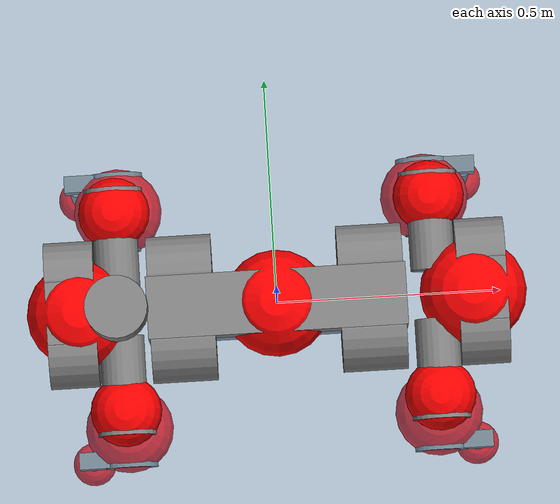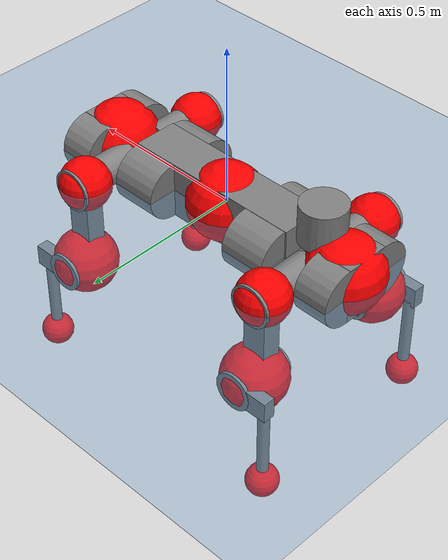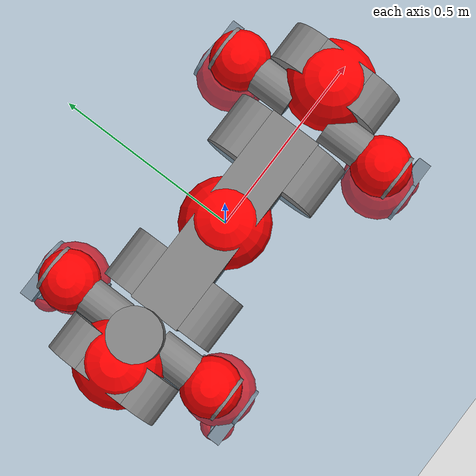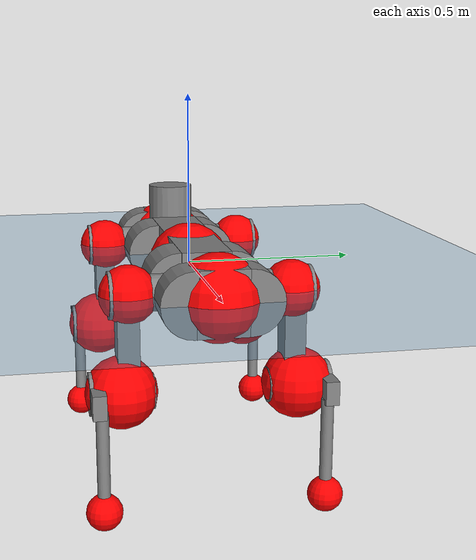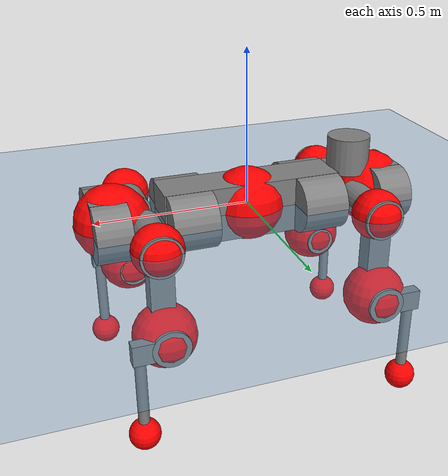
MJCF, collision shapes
<mujoco model="anymal_c">
  <compiler angle="radian" assetdir="assets" balanceinertia="true" inertiafromgeom="false"/>

  <option timestep="0.005" density="1.2" viscosity="2e-05"/>

  <size nkey="1"/>

  <visual>
    <quality shadowsize="8192"/>
    <map shadowclip="0.5"/>
  </visual>

  <default>
    <default class="/">
      <material specular="0" shininess="0.25"/>
      <geom contype="0" conaffinity="0" group="1" solref="-1000 -80"/>
      <site size="0.01 0.005 0.005" group="5"/>
      <general forcelimited="true" forcerange="-80 80" biastype="affine" gainprm="80" biasprm="0 -80 -2"/>
      <default class="anymal_c">
        <joint armature="0.01" damping="0.01" frictionloss="0.1"/>
        <default class="visual">
          <geom type="mesh" group="2"/>
          <default class="visual_zflip"/>
        </default>
        <default class="collision">
          <geom type="cylinder" group="3"/>
          <default class="foot">
            <geom size="0.03 0 0" type="sphere" condim="6" priority="1" friction="0.8 0.02 0.01" solimp="0.015 1 0.03"/>
          </default>
        </default>
      </default>
      <default class="reward_collision_sphere">
        <geom group="5" rgba="1 0 0 1"/>
      </default>
    </default>
  </default>

  <asset>
    <texture type="skybox" colorspace="auto" name="//unnamed_texture_0" builtin="gradient" rgb1="0.95 0.95 0.95" rgb2="0.95 0.95 0.95" width="100" height="600"/>
    <texture type="2d" colorspace="auto" name="texplane" builtin="checker" rgb1="0.345 0.575 0.748" rgb2="0.345 0.575 0.748" markrgb="1 1 1" width="512" height="512"/>
    <texture type="2d" colorspace="linear" name="base" file="base.png"/>
    <texture type="2d" colorspace="linear" name="top_shell" file="top_shell.png"/>
    <texture type="2d" colorspace="linear" name="bottom_shell" file="bottom_shell.png"/>
    <texture type="2d" colorspace="linear" name="remote" file="remote.png"/>
    <texture type="2d" colorspace="linear" name="hatch" file="hatch.png"/>
    <texture type="2d" colorspace="linear" name="handle" file="handle.png"/>
    <texture type="2d" colorspace="linear" name="face" file="face.png"/>
    <texture type="2d" colorspace="linear" name="battery" file="battery.png"/>
    <texture type="2d" colorspace="linear" name="lidar_cage" file="lidar_cage.png"/>
    <texture type="2d" colorspace="linear" name="depth_camera" file="depth_camera.png"/>
    <texture type="2d" colorspace="linear" name="wide_angle_camera" file="wide_angle_camera.png"/>
    <texture type="2d" colorspace="linear" name="lidar" file="lidar.png"/>
    <texture type="2d" colorspace="linear" name="drive" file="drive.png"/>
    <texture type="2d" colorspace="linear" name="hip_l" file="hip_l.png"/>
    <texture type="2d" colorspace="linear" name="shank_l" file="shank_l.png"/>
    <texture type="2d" colorspace="linear" name="foot" file="foot.png"/>
    <texture type="2d" colorspace="linear" name="thigh" file="thigh.png"/>
    <texture type="2d" colorspace="linear" name="shank_r" file="shank_r.png"/>
    <texture type="2d" colorspace="linear" name="hip_r" file="hip_r.png"/>
    <material name="MatPlane" class="/" texture="texplane" texuniform="true" texrepeat="2 2" specular="0.9" shininess="0.5"/>
    <material name="black_plastic" class="/" rgba="0.007 0.007 0.007 1"/>
    <material name="green" class="/" rgba="0.052 0.178 0.033 1"/>
    <material name="red" class="/" rgba="0.178 0.006 0.005 1"/>
    <material name="yellow" class="/" rgba="0.178 0.119 0.006 1"/>
    <material name="lwl" class="/" rgba="0.8 0.8 0.8 1"/>
    <material name="base" class="/" texture="base"/>
    <material name="top_shell" class="/" texture="top_shell"/>
    <material name="bottom_shell" class="/" texture="bottom_shell"/>
    <material name="hip_l" class="/" texture="hip_l"/>
    <material name="thigh" class="/" texture="thigh"/>
    <material name="shank_l" class="/" texture="shank_l"/>
    <material name="foot" class="/" texture="foot"/>
    <material name="hip_r" class="/" texture="hip_r"/>
    <material name="shank" class="/" texture="shank_r"/>
    <material name="hatch" class="/" texture="hatch"/>
    <material name="remote" class="/" texture="remote"/>
    <material name="handle" class="/" texture="handle"/>
    <material name="face" class="/" texture="face"/>
    <material name="depth_camera" class="/" texture="depth_camera"/>
    <material name="wide_angle_camera" class="/" texture="wide_angle_camera"/>
    <material name="battery" class="/" texture="battery"/>
    <material name="lidar_cage" class="/" texture="lidar_cage"/>
    <material name="lidar" class="/" texture="lidar"/>
    <material name="drive" class="/" texture="drive"/>
    <mesh name="base_0" class="/" file="base_0.obj"/>
    <mesh name="base_1" class="/" file="base_1.obj"/>
    <mesh name="base_2" class="/" file="base_2.obj"/>
    <mesh name="base_3" class="/" file="base_3.obj"/>
    <mesh name="base_4" class="/" file="base_4.obj"/>
    <mesh name="base_5" class="/" file="base_5.obj"/>
    <mesh name="top_shell" class="/" file="top_shell.obj"/>
    <mesh name="bottom_shell" class="/" file="bottom_shell.obj"/>
    <mesh name="remote" class="/" file="remote.obj"/>
    <mesh name="handle" class="/" file="handle.obj"/>
    <mesh name="face" class="/" file="face.obj"/>
    <mesh name="wide_angle_camera" class="/" file="wide_angle_camera.obj"/>
    <mesh name="depth_camera" class="/" file="depth_camera.obj"/>
    <mesh name="battery" class="/" file="battery.obj"/>
    <mesh name="lidar_cage" class="/" file="lidar_cage.obj"/>
    <mesh name="lidar" class="/" file="lidar.obj"/>
    <mesh name="drive" class="/" file="drive.obj"/>
    <mesh name="hip_l" class="/" file="hip_l.obj"/>
    <mesh name="thigh" class="/" file="thigh.obj"/>
    <mesh name="shank_l" class="/" file="shank_l.obj"/>
    <mesh name="foot" class="/" file="foot.obj"/>
    <mesh name="hip_r" class="/" file="hip_r.obj"/>
    <mesh name="hatch" class="/" file="hatch.obj"/>
    <mesh name="shank_r" class="/" file="shank_r.obj"/>
  </asset>

  <worldbody>
    <geom name="floor" class="/" size="100 100 0.125" type="plane" group="0" material="MatPlane"/>
    <light name="toplight_shadow" class="/" pos="0 0 5" dir="0.0990148 0.0990148 -0.990148" type="directional" ambient="0.04 0.04 0.04" diffuse="0.55 0.55 0.55" specular="0.12 0.12 0.12"/>
    <light name="toplight_fill" class="/" pos="0 0 5" dir="0.0990148 0.0990148 -0.990148" type="directional" castshadow="false" ambient="0.04 0.04 0.04" diffuse="0.3 0.3 0.3" specular="0.08 0.08 0.08"/>
    <body name="trunk" childclass="anymal_c" pos="-0.000141642 0.000107 -0.00154134" quat="1 -0.000238022 -0.000169585 0.000341036">
      <inertial pos="0.00180937 -0.00103925 0.048609" quat="0.498765 0.500482 0.50046 0.500291" mass="18.7656" diaginertia="0.554844 0.815085 0.170786"/>
      <joint name="//unnamed_joint_0" type="free" armature="0" damping="0" frictionloss="0"/>
      <geom name="//unnamed_geom_1" class="visual" material="green" mesh="base_0"/>
      <geom name="//unnamed_geom_2" class="visual" material="yellow" mesh="base_1"/>
      <geom name="//unnamed_geom_3" class="visual" material="red" mesh="base_2"/>
      <geom name="//unnamed_geom_4" class="visual" material="black_plastic" mesh="base_3"/>
      <geom name="//unnamed_geom_5" class="visual" material="lwl" mesh="base_4"/>
      <geom name="//unnamed_geom_6" class="visual" material="base" mesh="base_5"/>
      <geom name="trunk_1" class="collision" size="0.289872 0.0699691 0.0899603" type="box"/>
      <geom name="trunk_2" class="collision" size="0.0899603 0.072468" pos="0.212818 0.074377 0" quat="0.707107 0 0.707107 0"/>
      <geom name="trunk_3" class="collision" size="0.0899603 0.072468" pos="-0.212818 0.074377 0" quat="0.707107 0 0.707107 0"/>
      <geom name="trunk_4" class="collision" size="0.0899603 0.072468" pos="0.212818 -0.074377 0" quat="0.707107 0 0.707107 0"/>
      <geom name="trunk_5" class="collision" size="0.0899603 0.072468" pos="-0.212818 -0.074377 0" quat="0.707107 0 0.707107 0"/>
      <geom name="//unnamed_geom_12" class="visual" material="top_shell" mesh="top_shell"/>
      <geom name="//unnamed_geom_13" class="visual" material="bottom_shell" mesh="bottom_shell"/>
      <geom name="//unnamed_geom_14" class="visual" material="remote" mesh="remote"/>
      <geom name="//unnamed_geom_15" class="visual" material="handle" mesh="handle"/>
      <geom name="//unnamed_geom_16" class="visual" pos="0.405577 0 0" quat="1 0 0 0" material="face" mesh="face"/>
      <geom name="trunk_6" class="collision" size="0.0549757 0.0699691 0.0899603" pos="0.459393 0 0" type="box"/>
      <geom name="//unnamed_geom_18" class="collision" size="0.0899603 0.0549757" pos="0.459393 0.074377 0" quat="0.707107 0 0.707107 0"/>
      <geom name="//unnamed_geom_19" class="collision" size="0.0899603 0.0549757" pos="0.459393 -0.074377 0" quat="0.707107 0 0.707107 0"/>
      <geom name="//unnamed_geom_20" class="visual" pos="0.451712 0 -0.027806" quat="0.965926 0 0.258819 0" material="depth_camera" mesh="depth_camera"/>
      <geom name="//unnamed_geom_21" class="visual" pos="0.501957 0 0.0143364" material="wide_angle_camera" mesh="wide_angle_camera"/>
      <geom name="//unnamed_geom_22" class="visual_zflip" pos="-0.405577 0 0" quat="0 0 0 1" material="face" mesh="face"/>
      <geom name="trunk_7" class="collision" size="0.0549757 0.0699691 0.0899603" pos="-0.459393 0 0" quat="0 0 0 1" type="box"/>
      <geom name="//unnamed_geom_24" class="collision" size="0.0899603 0.0549757" pos="-0.459393 -0.074377 0" quat="0 -0.707107 0 0.707107"/>
      <geom name="//unnamed_geom_25" class="collision" size="0.0899603 0.0549757" pos="-0.459393 0.074377 0" quat="0 -0.707107 0 0.707107"/>
      <geom name="//unnamed_geom_26" class="visual" pos="-0.451712 0 -0.027806" quat="0 -0.258819 0 0.965926" material="depth_camera" mesh="depth_camera"/>
      <geom name="//unnamed_geom_27" class="visual_zflip" pos="-0.501957 0 0.0143364" quat="0 0 0 1" material="wide_angle_camera" mesh="wide_angle_camera"/>
      <geom name="//unnamed_geom_28" class="visual" material="battery" mesh="battery"/>
      <geom name="//unnamed_geom_29" class="visual" pos="0 0.082343 0.0279785" quat="0.683013 -0.183013 0.183013 0.683013" material="depth_camera" mesh="depth_camera"/>
      <geom name="//unnamed_geom_30" class="visual" pos="0 -0.082343 0.0279785" quat="0.683013 0.183013 0.183013 -0.683013" material="depth_camera" mesh="depth_camera"/>
      <geom name="//unnamed_geom_31" class="visual" pos="-0.356164 0 0.0703891" quat="1 0 0 0" material="lidar_cage" mesh="lidar_cage"/>
      <geom name="trunk_8" class="collision" size="0.0699691 0.0599735" pos="-0.356164 0 0.12785"/>
      <geom name="//unnamed_geom_33" class="visual" pos="-0.356164 3.30228e-05 0.136181" quat="0.707107 0 0 -0.707107" material="lidar" mesh="lidar"/>
      <geom name="//unnamed_geom_34" class="visual" pos="0.293444 0.110466 1.80874e-09" quat="0.258819 0.965926 0 0" material="drive" mesh="drive"/>
      <geom name="//unnamed_geom_35" class="visual" pos="0.293444 -0.110466 -1.80874e-09" quat="0.258819 -0.965926 0 0" material="drive" mesh="drive"/>
      <geom name="//unnamed_geom_36" class="visual" pos="-0.293444 0.110466 -1.80874e-09" quat="0 0 0.965926 -0.258819" material="drive" mesh="drive"/>
      <geom name="//unnamed_geom_37" class="visual" pos="-0.293444 -0.110466 1.80874e-09" quat="0 0 -0.965926 -0.258819" material="drive" mesh="drive"/>
      <geom name="//unnamed_geom_38" class="visual" pos="0.113503 0 0.0699103" quat="1 0 0 0" material="hatch" mesh="hatch"/>
      <geom name="//unnamed_geom_39" class="reward_collision_sphere" size="0.119947"/>
      <geom name="//unnamed_geom_40" class="reward_collision_sphere" size="0.119947" pos="0.440313 0 0"/>
      <geom name="//unnamed_geom_41" class="reward_collision_sphere" size="0.119947" pos="-0.440313 0 0"/>
      <site name="imu" pos="0.256769 -0.00333945 0.0578986" size="0.00999559"/>
      <camera name="track" pos="0 -2.12506 0" quat="0.707107 0.707107 0 0" mode="trackcom"/>
      <camera name="ego_camera" pos="0.440313 0 -0.038307" quat="-0.5 -0.5 0.5 0.5"/>
      <body name="LF_HIP" pos="0.294708 0.1088 0.000530914" quat="0.25891 0.965901 0.00123485 0.00019875">
        <inertial pos="0.0553317 -0.0150658 -0.0103799" quat="-0.124855 0.707383 -0.135198 0.682453" mass="2.61393" diaginertia="0.00507451 0.00625256 0.00264445"/>
        <joint name="LF_HAA" pos="0 0 0" axis="1 -0.000268051 0.00075469" range="-0.773221 0.498606" armature="0.0111547" damping="0.021403" frictionloss="0.0976159"/>
        <geom name="//unnamed_geom_42" class="visual" pos="0 0.0001064 -1.74761e-05" quat="0.258819 -0.965926 0 0" material="hip_l" mesh="hip_l"/>
        <geom name="//unnamed_geom_43" class="visual" pos="0.0586106 -0.0720887 -0.0408448" quat="0.183013 -0.683013 0.683013 0.183013" material="drive" mesh="drive"/>
        <geom name="//unnamed_geom_44" class="collision" size="0.049978 0.0699691" pos="0.0586106 -0.0127076 -0.00661274" quat="-0.353553 -0.612372 0.612372 -0.353553"/>
        <body name="LF_THIGH" pos="0.0585907 -0.0790255 -0.0380828" quat="0.182901 -0.68316 0.682881 0.183065">
          <inertial pos="0.0311876 0.000527858 -0.237717" quat="0.993245 -0.00886206 -0.0799237 0.0836543" mass="3.15749" diaginertia="0.026903 0.0410683 0.00344885"/>
          <joint name="LF_HFE" pos="0 0 0" axis="0.999929 0.00877401 0.0080305" range="-3.17987 3.19323" armature="0.0110621" damping="0.0105441" frictionloss="0.101159"/>
          <geom name="//unnamed_geom_45" class="visual" pos="-0.00167236 -2.63525e-06 0" quat="0.707107 0 0 -0.707107" material="thigh" mesh="thigh"/>
          <geom name="//unnamed_geom_46" class="collision" size="0.0649713 0.0399824" pos="0.039139 0 0" quat="0.5 0.5 -0.5 -0.5"/>
          <geom name="//unnamed_geom_47" class="collision" size="0.0374835 0.0299868 0.141252" pos="0.0293542 0 -0.135333" quat="0.707107 0 0 -0.707107" type="box"/>
          <geom name="//unnamed_geom_48" class="visual" pos="0.0981409 0 -0.272937" quat="1 0 0 0" material="drive" mesh="drive"/>
          <geom name="//unnamed_geom_49" class="collision" size="0.049978 0.0699691" pos="0.0296478 0 -0.272937" quat="0.707107 0 0.707107 0"/>
          <geom name="//unnamed_geom_50" class="reward_collision_sphere" size="0.0799647" pos="0.0244618 0 0"/>
          <body name="LF_SHANK" pos="0.0958785 0.00162499 -0.271665" quat="1 0.000278259 5.53814e-05 0.000188949">
            <inertial pos="0.0056557 -0.0651972 -0.0775021" quat="0.992881 -0.116297 -0.000841956 -0.0257157" mass="0.558682" diaginertia="0.00909503 0.0127221 0.000883604"/>
            <joint name="LF_KFE" pos="0 0 0" axis="0.999962 -0.00861901 -0.000859862" range="-3.12615 3.11085" armature="0.00872169" damping="0.0106467" frictionloss="0.0923253"/>
            <geom name="//unnamed_geom_51" class="visual" pos="-0.00054532 -0.00290767 0" quat="0.707107 0 0 -0.707107" material="shank_l" mesh="shank_l"/>
            <geom name="LF_kfe_act" class="collision" size="0.0599735 0.0199912" pos="0.0195695 0 0" quat="0.5 0.5 -0.5 -0.5"/>
            <geom name="//unnamed_geom_53" class="collision" size="0.0574736 0.0337351 0.0189916" pos="0.0195695 -0.0610943 0" quat="0.5 0.5 -0.5 -0.5" type="box"/>
            <geom name="//unnamed_geom_54" class="visual" pos="0.0127692 -0.0943864 -0.323665" quat="0.382683 0 0 -0.92388" material="foot" mesh="foot"/>
            <geom name="LF_calf" class="collision" size="0.0174923 0.14119" pos="0.0127691 -0.0934494 -0.161833" quat="0.707107 0 0 -0.707107"/>
            <geom name="LF_foot" class="foot" size="0.030329" pos="0.0127691 -0.0934494 -0.302118" quat="0.707107 0 0 -0.707107"/>
            <geom name="//unnamed_geom_57" class="reward_collision_sphere" size="0.0999559" pos="-0.0489237 0 0"/>
            <geom name="//unnamed_geom_58" class="reward_collision_sphere" size="0.049978" pos="0.0127691 -0.0934494 -0.302118"/>
            <site name="LF_foot" class="foot" pos="0.0127691 -0.0934494 -0.302118" quat="0.707107 0 0 -0.707107" size="0.00999559"/>
          </body>
        </body>
      </body>
      <body name="RF_HIP" pos="0.296579 -0.112636 0.00135768" quat="0.258678 -0.965964 -0.000207246 -0.00022464">
        <inertial pos="0.0558924 0.0179514 -0.00944375" quat="0.135091 0.680675 0.127657 0.708615" mass="2.87393" diaginertia="0.00529333 0.00646781 0.00264759"/>
        <joint name="RF_HAA" pos="0 0 0" axis="0.999985 -0.00494352 -0.00222755" stiffness="0.00532713" range="-0.471144 0.732587" armature="0.0104631" damping="0.0219266" frictionloss="0.0898809"/>
        <geom name="//unnamed_geom_59" class="visual" pos="0 -0.000106399 -1.74761e-05" quat="0.258819 0.965926 0 0" material="hip_r" mesh="hip_r"/>
        <geom name="//unnamed_geom_60" class="visual" pos="0.0586106 0.0720887 -0.0408448" quat="0.183013 0.683013 0.683013 -0.183013" material="drive" mesh="drive"/>
        <geom name="//unnamed_geom_61" class="collision" size="0.049978 0.0699691" pos="0.0586106 0.0127076 -0.00661274" quat="-0.353553 0.612372 0.612372 0.353553"/>
        <body name="RF_THIGH" pos="0.0569035 0.0792045 -0.0416119" quat="0.182842 0.684192 0.682087 -0.182228">
          <inertial pos="0.0292997 -0.000994769 -0.234866" quat="0.992728 -0.0055968 -0.0800958 0.0896872" mass="2.89258" diaginertia="0.0266736 0.038128 0.00335456"/>
          <joint name="RF_HFE" pos="0 0 0" axis="0.999987 -0.00501238 -0.000320201" stiffness="0.00546912" range="-3.18421 3.15214" armature="0.00951433" damping="0.00680486" frictionloss="0.0897363"/>
          <geom name="//unnamed_geom_62" class="visual" pos="-0.00167236 -2.63525e-06 0" quat="0.707107 0 0 -0.707107" material="thigh" mesh="thigh"/>
          <geom name="//unnamed_geom_63" class="collision" size="0.0649713 0.0399824" pos="0.039139 0 0" quat="0.5 0.5 0.5 0.5"/>
          <geom name="//unnamed_geom_64" class="collision" size="0.0374835 0.0299868 0.141252" pos="0.0293542 0 -0.135333" quat="0.707107 0 0 0.707107" type="box"/>
          <geom name="//unnamed_geom_65" class="visual" pos="0.0981409 0 -0.272937" quat="1 0 0 0" material="drive" mesh="drive"/>
          <geom name="//unnamed_geom_66" class="collision" size="0.049978 0.0699691" pos="0.0296478 0 -0.272937" quat="0.707107 0 0.707107 0"/>
          <geom name="//unnamed_geom_67" class="reward_collision_sphere" size="0.0799647" pos="0.0244618 0 0"/>
          <body name="RF_SHANK" pos="0.0971988 0.00234821 -0.27047" quat="1 -5.0144e-06 -0.000640494 -0.000277804">
            <inertial pos="0.00282595 0.0630864 -0.0788123" quat="0.992935 0.115414 0.0112191 0.0251946" mass="0.604641" diaginertia="0.00935634 0.0126335 0.000910514"/>
            <joint name="RF_KFE" pos="0 0 0" axis="0.999931 -0.00446941 -0.0108993" range="-3.08566 3.12891" armature="0.0101085" damping="0.0144537" frictionloss="0.11084"/>
            <geom name="//unnamed_geom_68" class="visual" pos="-0.000545317 0.00290767 0" quat="0.707107 0 0 0.707107" material="shank" mesh="shank_r"/>
            <geom name="RF_kfe_act" class="collision" size="0.0599735 0.0199912" pos="0.0195695 0 0" quat="0.5 0.5 0.5 0.5"/>
            <geom name="//unnamed_geom_70" class="collision" size="0.0574736 0.0337351 0.0189916" pos="0.0195695 0.0610943 0" quat="0.5 0.5 0.5 0.5" type="box"/>
            <geom name="//unnamed_geom_71" class="visual" pos="0.012769 0.0943864 -0.323665" quat="0.382683 0 0 0.92388" material="foot" mesh="foot"/>
            <geom name="RF_calf" class="collision" size="0.0174923 0.14119" pos="0.0127691 0.0934494 -0.161833" quat="0.707107 0 0 0.707107"/>
            <geom name="RF_foot" class="foot" size="0.0297534" pos="0.0127691 0.0934494 -0.302118" quat="0.707107 0 0 0.707107"/>
            <geom name="//unnamed_geom_74" class="reward_collision_sphere" size="0.0999559" pos="-0.0489237 0 0"/>
            <geom name="//unnamed_geom_75" class="reward_collision_sphere" size="0.049978" pos="0.0127691 0.0934494 -0.302118"/>
            <site name="RF_foot" class="foot" pos="0.0127691 0.0934494 -0.302118" quat="0.707107 0 0 0.707107" size="0.00999559"/>
          </body>
        </body>
      </body>
      <body name="LH_HIP" pos="-0.294475 0.111773 0.000850706" quat="2.00455e-05 -7.62089e-05 0.965947 -0.258742">
        <inertial pos="0.0529642 0.0158483 -0.00671892" quat="0.136253 0.685674 0.136351 0.701922" mass="2.86759" diaginertia="0.00544068 0.00683847 0.00256637"/>
        <joint name="LH_HAA" pos="0 0 0" axis="0.999976 0.00118854 -0.00676799" range="-0.454694 0.66998" armature="0.010232" damping="0" frictionloss="0.112776"/>
        <geom name="//unnamed_geom_76" class="visual" pos="0 -0.000106399 -1.74761e-05" quat="-0.258819 -0.965926 0 0" material="hip_r" mesh="hip_r"/>
        <geom name="//unnamed_geom_77" class="visual" pos="0.0586106 0.0720887 -0.0408448" quat="0.183013 0.683013 0.683013 -0.183013" material="drive" mesh="drive"/>
        <geom name="//unnamed_geom_78" class="collision" size="0.049978 0.0699691" pos="0.0586106 0.0127076 -0.00661274" quat="-0.353553 0.612372 0.612372 0.353553"/>
        <body name="LH_THIGH" pos="0.0582629 0.076675 -0.041433" quat="0.183364 0.682463 0.683727 -0.182042">
          <inertial pos="0.0275912 -0.00163596 -0.234858" quat="0.993939 0.00292061 -0.070709 0.0841238" mass="3.0099" diaginertia="0.0263746 0.0388802 0.0034479"/>
          <joint name="LH_HFE" pos="0 0 0" axis="0.999999 0.00139858 0.000875748" stiffness="0.0101423" range="-3.15095 3.13588" armature="0.0100668" damping="0.00179863" frictionloss="0.10182"/>
          <geom name="//unnamed_geom_79" class="visual" pos="-0.00167236 -2.63525e-06 0" quat="0.707107 0 0 -0.707107" material="thigh" mesh="thigh"/>
          <geom name="//unnamed_geom_80" class="collision" size="0.0649713 0.0399824" pos="0.039139 0 0" quat="0.5 0.5 -0.5 -0.5"/>
          <geom name="//unnamed_geom_81" class="collision" size="0.0374835 0.0299868 0.141252" pos="0.0293542 0 -0.135333" quat="0.707107 0 0 -0.707107" type="box"/>
          <geom name="//unnamed_geom_82" class="visual" pos="0.0981409 0 -0.272937" quat="1 0 0 0" material="drive" mesh="drive"/>
          <geom name="//unnamed_geom_83" class="collision" size="0.049978 0.0699691" pos="0.0296478 0 -0.272937" quat="0.707107 0 0.707107 0"/>
          <geom name="//unnamed_geom_84" class="reward_collision_sphere" size="0.0799647" pos="0.0244618 0 0"/>
          <body name="LH_SHANK" pos="0.0991366 -0.00164532 -0.273093" quat="1 0.00011535 -0.000231978 -1.80119e-05">
            <inertial pos="0.00637928 0.0623078 -0.0789948" quat="0.992943 0.115901 -0.000442568 0.0251141" mass="0.568665" diaginertia="0.00852682 0.0120161 0.000842515"/>
            <joint name="LH_KFE" pos="0 0 0" axis="0.99997 -0.00668549 0.00383024" range="-3.15291 3.1947" armature="0.0099248" damping="0.0127489" frictionloss="0.11315"/>
            <geom name="//unnamed_geom_85" class="visual" pos="-0.000545317 0.00290767 0" quat="-0.707107 0 0 -0.707107" material="shank" mesh="shank_r"/>
            <geom name="LH_kfe_act" class="collision" size="0.0599735 0.0199912" pos="0.0195695 0 0" quat="0.5 0.5 -0.5 -0.5"/>
            <geom name="//unnamed_geom_87" class="collision" size="0.0574736 0.0337351 0.0189916" pos="0.0195695 0.0610943 0" quat="0.5 0.5 -0.5 -0.5" type="box"/>
            <geom name="//unnamed_geom_88" class="visual" pos="0.012769 0.0943864 -0.323665" quat="-0.382683 0 0 -0.92388" material="foot" mesh="foot"/>
            <geom name="LH_calf" class="collision" size="0.0174923 0.14119" pos="0.0127691 0.0934494 -0.161833" quat="0.707107 0 0 -0.707107"/>
            <geom name="LH_foot" class="foot" size="0.0318223" pos="0.0127691 0.0934494 -0.302118" quat="0.707107 0 0 -0.707107"/>
            <geom name="//unnamed_geom_91" class="reward_collision_sphere" size="0.0999559" pos="-0.0489237 0 0"/>
            <geom name="//unnamed_geom_92" class="reward_collision_sphere" size="0.049978" pos="0.0127691 0.0934494 -0.302118"/>
            <site name="LH_foot" class="foot" pos="0.0127691 0.0934494 -0.302118" quat="0.707107 0 0 -0.707107" size="0.00999559"/>
          </body>
        </body>
      </body>
      <body name="RH_HIP" pos="-0.292648 -0.109754 0.00128641" quat="4.07209e-05 -4.76361e-05 -0.965896 -0.258931">
        <inertial pos="0.0573682 -0.0136996 -0.0108309" quat="-0.130054 0.706768 -0.145193 0.680061" mass="2.6307" diaginertia="0.00526209 0.00628834 0.00257373"/>
        <joint name="RH_HAA" pos="0 0 0" axis="0.999888 0.0147774 0.00230819" range="-0.726161 0.538069" armature="0.0100044" damping="0.00355673" frictionloss="0.110417"/>
        <geom name="//unnamed_geom_93" class="visual" pos="0 0.0001064 -1.74761e-05" quat="-0.258819 0.965926 0 0" material="hip_l" mesh="hip_l"/>
        <geom name="//unnamed_geom_94" class="visual" pos="0.0586106 -0.0720887 -0.0408448" quat="-0.183013 0.683013 -0.683013 -0.183013" material="drive" mesh="drive"/>
        <geom name="//unnamed_geom_95" class="collision" size="0.049978 0.0699691" pos="0.0586106 -0.0127076 -0.00661274" quat="0.353553 0.612372 -0.612372 0.353553"/>
        <body name="RH_THIGH" pos="0.0575285 -0.0785999 -0.0385747" quat="-0.182996 0.682991 -0.683033 -0.183038">
          <inertial pos="0.0302076 -0.00233787 -0.232818" quat="0.993574 -0.00251183 -0.0793521 0.0806722" mass="3.14775" diaginertia="0.0281097 0.0421566 0.00346248"/>
          <joint name="RH_HFE" pos="0 0 0" axis="0.999953 0.00549111 -0.00797575" stiffness="0.00162411" range="-3.08587 3.15471" armature="0.0088061" damping="0.00664215" frictionloss="0.112772"/>
          <geom name="//unnamed_geom_96" class="visual" pos="-0.00167236 -2.63525e-06 0" quat="0.707107 0 0 -0.707107" material="thigh" mesh="thigh"/>
          <geom name="//unnamed_geom_97" class="collision" size="0.0649713 0.0399824" pos="0.039139 0 0" quat="0.5 0.5 0.5 0.5"/>
          <geom name="//unnamed_geom_98" class="collision" size="0.0374835 0.0299868 0.141252" pos="0.0293542 0 -0.135333" quat="0.707107 0 0 0.707107" type="box"/>
          <geom name="//unnamed_geom_99" class="visual" pos="0.0981409 0 -0.272937" quat="1 0 0 0" material="drive" mesh="drive"/>
          <geom name="//unnamed_geom_100" class="collision" size="0.049978 0.0699691" pos="0.0296478 0 -0.272937" quat="0.707107 0 0.707107 0"/>
          <geom name="//unnamed_geom_101" class="reward_collision_sphere" size="0.0799647" pos="0.0244618 0 0"/>
          <body name="RH_SHANK" pos="0.09967 -0.00101946 -0.26994" quat="1 0.000587307 0.000250323 -0.00023822">
            <inertial pos="0.00802197 -0.0642455 -0.0774969" quat="0.992449 -0.118601 0.000550516 -0.0312936" mass="0.571595" diaginertia="0.00899684 0.0117233 0.000846288"/>
            <joint name="RH_KFE" pos="0 0 0" axis="0.999997 0.00195507 0.00172111" range="-3.12054 3.13481" armature="0.0102992" damping="0.00654308" frictionloss="0.105234"/>
            <geom name="//unnamed_geom_102" class="visual" pos="-0.00054532 -0.00290767 0" quat="0.707107 0 0 -0.707107" material="shank_l" mesh="shank_l"/>
            <geom name="RH_kfe_act" class="collision" size="0.0599735 0.0199912" pos="0.0195695 0 0" quat="0.5 0.5 0.5 0.5"/>
            <geom name="//unnamed_geom_104" class="collision" size="0.0574736 0.0337351 0.0189916" pos="0.0195695 -0.0610943 0" quat="0.5 0.5 0.5 0.5" type="box"/>
            <geom name="//unnamed_geom_105" class="visual" pos="0.0127692 -0.0943864 -0.323665" quat="0.382683 0 0 -0.92388" material="foot" mesh="foot"/>
            <geom name="RH_calf" class="collision" size="0.0174923 0.14119" pos="0.0127691 -0.0934494 -0.161833" quat="0.707107 0 0 0.707107"/>
            <geom name="RH_foot" class="foot" size="0.0325837" pos="0.0127691 -0.0934494 -0.302118" quat="0.707107 0 0 0.707107"/>
            <geom name="//unnamed_geom_108" class="reward_collision_sphere" size="0.0999559" pos="-0.0489237 0 0"/>
            <geom name="//unnamed_geom_109" class="reward_collision_sphere" size="0.049978" pos="0.0127691 -0.0934494 -0.302118"/>
            <site name="RH_foot" class="foot" pos="0.0127691 -0.0934494 -0.302118" quat="0.707107 0 0 0.707107" size="0.00999559"/>
          </body>
        </body>
      </body>
    </body>
  </worldbody>

  <contact>
    <pair class="/" geom1="floor" geom2="LF_foot" name="//unnamed_contact_0"/>
    <pair class="/" geom1="floor" geom2="RF_foot" name="//unnamed_contact_1"/>
    <pair class="/" geom1="floor" geom2="LH_foot" name="//unnamed_contact_2"/>
    <pair class="/" geom1="floor" geom2="RH_foot" name="//unnamed_contact_3"/>
  </contact>

  <actuator>
    <general name="LF_HAA" class="/" joint="LF_HAA" forcerange="-73.1619 73.1619" gainprm="78.8922" biasprm="0 -78.8922 -2.1268"/>
    <general name="LF_HFE" class="/" joint="LF_HFE" forcerange="-86.2075 86.2075" gainprm="78.8922" biasprm="0 -78.8922 -2.1268"/>
    <general name="LF_KFE" class="/" joint="LF_KFE" forcerange="-86.5117 86.5117" gainprm="78.8922" biasprm="0 -78.8922 -2.1268"/>
    <general name="RF_HAA" class="/" joint="RF_HAA" forcerange="-73.6742 73.6742" gainprm="78.8922" biasprm="0 -78.8922 -2.1268"/>
    <general name="RF_HFE" class="/" joint="RF_HFE" forcerange="-89.8635 89.8635" gainprm="78.8922" biasprm="0 -78.8922 -2.1268"/>
    <general name="RF_KFE" class="/" joint="RF_KFE" forcerange="-72.1369 72.1369" gainprm="78.8922" biasprm="0 -78.8922 -2.1268"/>
    <general name="LH_HAA" class="/" joint="LH_HAA" forcerange="-85.8213 85.8213" gainprm="78.8922" biasprm="0 -78.8922 -2.1268"/>
    <general name="LH_HFE" class="/" joint="LH_HFE" forcerange="-80.727 80.727" gainprm="78.8922" biasprm="0 -78.8922 -2.1268"/>
    <general name="LH_KFE" class="/" joint="LH_KFE" forcerange="-72.8255 72.8255" gainprm="78.8922" biasprm="0 -78.8922 -2.1268"/>
    <general name="RH_HAA" class="/" joint="RH_HAA" forcerange="-85.6443 85.6443" gainprm="78.8922" biasprm="0 -78.8922 -2.1268"/>
    <general name="RH_HFE" class="/" joint="RH_HFE" forcerange="-76.5724 76.5724" gainprm="78.8922" biasprm="0 -78.8922 -2.1268"/>
    <general name="RH_KFE" class="/" joint="RH_KFE" forcerange="-74.749 74.749" gainprm="78.8922" biasprm="0 -78.8922 -2.1268"/>
  </actuator>

  <sensor>
    <gyro site="imu" name="imu_angular_velocity"/>
    <velocimeter site="imu" name="imu_linear_velocity"/>
    <framelinvel objtype="site" objname="LF_foot" name="LF_foot_global_linear_velocity"/>
    <framelinvel objtype="site" objname="RF_foot" name="RF_foot_global_linear_velocity"/>
    <framelinvel objtype="site" objname="LH_foot" name="LH_foot_global_linear_velocity"/>
    <framelinvel objtype="site" objname="RH_foot" name="RH_foot_global_linear_velocity"/>
  </sensor>

  <keyframe>
    <key name="home" qpos="0 0 0.55 1 0 0 0 0 0.4 -0.8 0 -0.4 0.8 0 -0.4 0.8 0 0.4 -0.8"/>
  </keyframe>
</mujoco>
